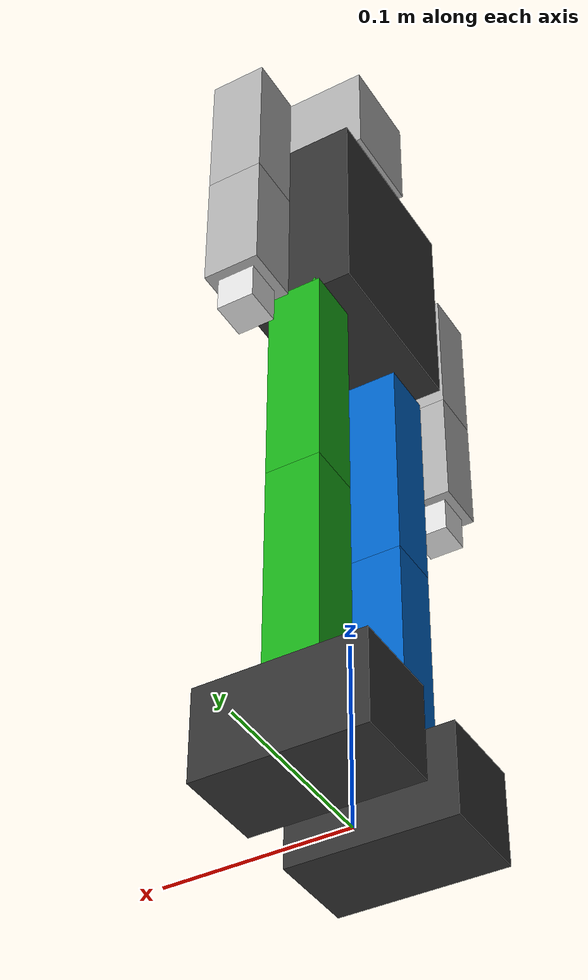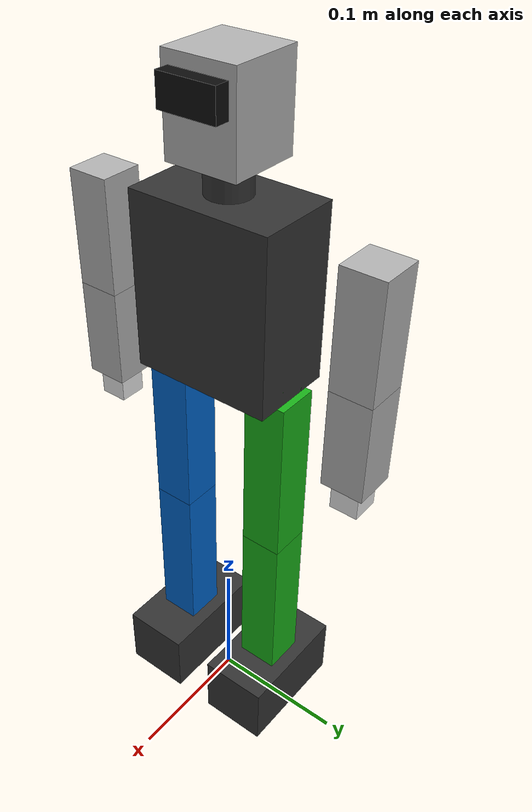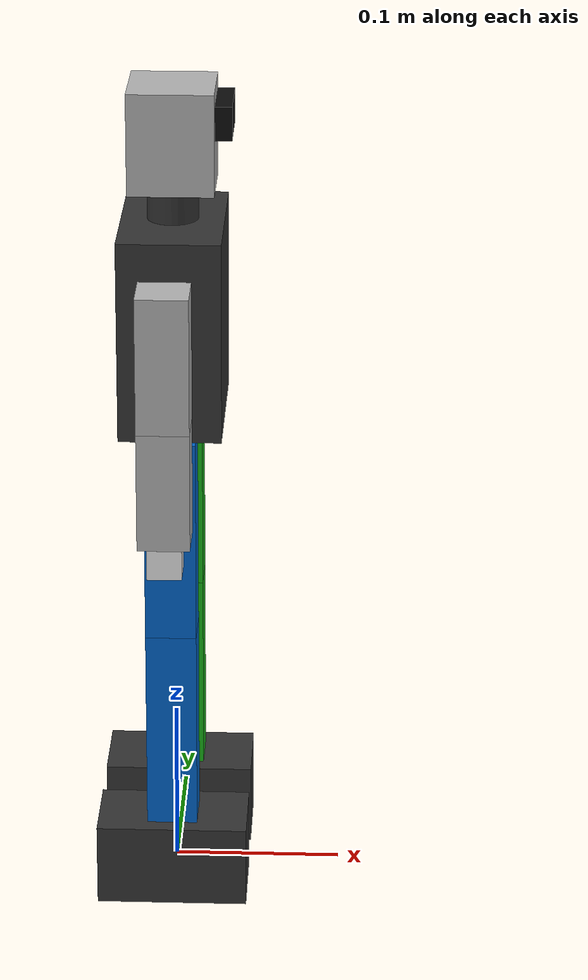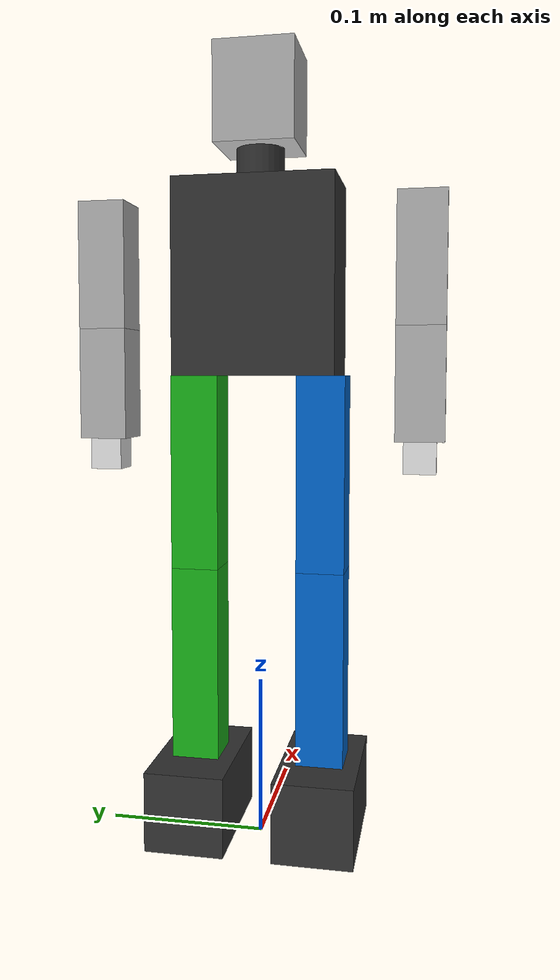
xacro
<?xml version="1.0"?>
<robot name="humanoid_robot" xmlns:xacro="http://www.ros.org/wiki/xacro">

  <!-- ── Include materials ─────────────────────────────── -->
  <xacro:include filename="$(find humanoid_robot)/urdf/materials.xacro"/>

  <!-- Link lengths (meters) -->
  <xacro:property name="thigh_len"    value="0.1225"/>
  <xacro:property name="shank_len"    value="0.1230"/>
  <xacro:property name="foot_height"  value="0.0500"/>
  <xacro:property name="foot_len"     value="0.0900"/>  <!-- foot length front-back -->
  <xacro:property name="foot_width"   value="0.0500"/>  <!-- foot width left-right -->
  <xacro:property name="torso_height" value="0.1200"/>
  <xacro:property name="torso_width"  value="0.1000"/>
  <xacro:property name="torso_depth"  value="0.0600"/>

  <!-- Hip geometry -->
  <xacro:property name="hip_offset_y"  value="0.0400"/>  <!-- 40mm from center to hip joint -->
  <xacro:property name="hip_bracket_w" value="0.0200"/>

  <!-- Arm geometry -->
  <xacro:property name="upper_arm_len" value="0.0800"/>
  <xacro:property name="forearm_len"   value="0.0700"/>
  <xacro:property name="shoulder_offset_y" value="0.0500"/>
  <xacro:property name="shoulder_offset_z" value="0.0500"/>  <!-- up from torso top -->

  <!-- Head geometry -->
  <xacro:property name="head_height" value="0.0600"/>
  <xacro:property name="head_width"  value="0.0500"/>
  <xacro:property name="neck_height" value="0.0200"/>

  <!-- Link visual thickness (for box representations) -->
  <xacro:property name="link_thickness" value="0.0300"/>

  <xacro:property name="foot_clearance" value="0.001"/>

  <!-- Servo / joint mass estimates (kg) -->
  <xacro:property name="torso_mass"   value="0.400"/>
  <xacro:property name="thigh_mass"   value="0.120"/>
  <xacro:property name="shank_mass"   value="0.100"/>
  <xacro:property name="foot_mass"    value="0.060"/>
  <xacro:property name="upper_arm_m"  value="0.080"/>
  <xacro:property name="forearm_m"    value="0.060"/>
  <xacro:property name="head_mass"    value="0.100"/>
  <xacro:property name="bracket_mass" value="0.030"/>

  <!-- ============================================================
       XACRO MACROS
       ============================================================ -->

  <!-- Inertia macro for a solid box (kg, meters) -->
  <xacro:macro name="box_inertia" params="m x y z">
    <inertial>
      <mass value="${m}"/>
      <inertia
        ixx="${m*(y*y+z*z)/12}" ixy="0" ixz="0"
        iyy="${m*(x*x+z*z)/12}" iyz="0"
        izz="${m*(x*x+y*y)/12}"/>
    </inertial>
  </xacro:macro>

  <!-- Inertia macro for a solid cylinder (kg, meters) -->
  <xacro:macro name="cylinder_inertia" params="m r l">
    <inertial>
      <mass value="${m}"/>
      <inertia
        ixx="${m*(3*r*r+l*l)/12}" ixy="0" ixz="0"
        iyy="${m*(3*r*r+l*l)/12}" iyz="0"
        izz="${m*r*r/2}"/>
    </inertial>
  </xacro:macro>

  <xacro:macro name="leg" params="prefix reflect">

    <!-- ── HIP ROLL joint ─────────────────────────────── -->
    <!-- Connects torso to hip bracket; rotation in frontal plane (X axis) -->
    <joint name="${prefix}_hip_roll" type="revolute">
      <parent link="torso"/>
      <child  link="${prefix}_hip_bracket"/>
      <!-- Origin: at hip joint location, offset left/right from torso center -->
      <origin xyz="0 ${reflect * hip_offset_y} ${-torso_height/2}" rpy="0 0 0"/>
      <axis xyz="1 0 0"/>
      <!-- Limits in radians: centered around 0, based on the original 0° to 170° span -->
      <limit lower="${-85.0*pi/180}" upper="${85.0*pi/180}" effort="10" velocity="3.0"/>
      <dynamics damping="0.1" friction="0.1"/>
    </joint>

    <link name="${prefix}_hip_bracket">
      <xacro:box_inertia m="${bracket_mass}"
        x="${hip_bracket_w}" y="${hip_bracket_w}" z="${hip_bracket_w}"/>
      <visual>
        <geometry><box size="${hip_bracket_w} ${hip_bracket_w} ${hip_bracket_w}"/></geometry>
        <material name="${'blue' if prefix == 'r' else 'green'}"/>
      </visual>
      <collision>
        <geometry><box size="${hip_bracket_w} ${hip_bracket_w} ${hip_bracket_w}"/></geometry>
      </collision>
    </link>

    <!-- ── HIP PITCH joint ────────────────────────────── -->
    <!-- Rotation in sagittal plane (Y axis); moves thigh forward/back -->
    <joint name="${prefix}_hip_pitch" type="revolute">
      <parent link="${prefix}_hip_bracket"/>
      <child  link="${prefix}_thigh"/>
      <origin xyz="0 0 0" rpy="0 0 0"/>
      <axis xyz="0 1 0"/>
      <limit lower="${-85.0*pi/180}" upper="${85.0*pi/180}" effort="10" velocity="3.0"/>
      <dynamics damping="0.1" friction="0.1"/>
    </joint>

    <!-- Thigh link — box representing L1 = 122.5mm -->
    <link name="${prefix}_thigh">
      <xacro:box_inertia m="${thigh_mass}"
        x="${link_thickness}" y="${link_thickness}" z="${thigh_len}"/>
      <visual>
        <!-- Offset so top of box is at joint origin (thigh hangs downward) -->
        <origin xyz="0 0 ${-thigh_len/2}" rpy="0 0 0"/>
        <geometry><box size="${link_thickness} ${link_thickness} ${thigh_len}"/></geometry>
        <material name="${'blue' if prefix == 'r' else 'green'}"/>
      </visual>
      <collision>
        <origin xyz="0 0 ${-thigh_len/2}" rpy="0 0 0"/>
        <geometry><box size="${link_thickness} ${link_thickness} ${thigh_len}"/></geometry>
      </collision>
    </link>

    <!-- ── KNEE PITCH joint ───────────────────────────── -->
    <!-- At bottom of thigh, rotates shank forward/back -->
    <joint name="${prefix}_knee_pitch" type="revolute">
      <parent link="${prefix}_thigh"/>
      <child  link="${prefix}_shank"/>
      <origin xyz="0 0 ${-thigh_len}" rpy="0 0 0"/>
      <axis xyz="0 1 0"/>
      <limit lower="0.0" upper="${170.0*pi/180}" effort="10" velocity="3.0"/>
      <dynamics damping="0.1" friction="0.1"/>
    </joint>

    <!-- Shank link — box representing L2 = 123.0mm -->
    <link name="${prefix}_shank">
      <xacro:box_inertia m="${shank_mass}"
        x="${link_thickness}" y="${link_thickness}" z="${shank_len}"/>
      <visual>
        <origin xyz="0 0 ${-shank_len/2}" rpy="0 0 0"/>
        <geometry><box size="${link_thickness} ${link_thickness} ${shank_len}"/></geometry>
        <material name="${'blue' if prefix == 'r' else 'green'}"/>
      </visual>
      <collision>
        <origin xyz="0 0 ${-shank_len/2}" rpy="0 0 0"/>
        <geometry><box size="${link_thickness} ${link_thickness} ${shank_len}"/></geometry>
      </collision>
    </link>

    <!-- ── ANKLE PITCH joint ──────────────────────────── -->
    <!-- At bottom of shank; tilts foot forward/back -->
    <joint name="${prefix}_ankle_pitch" type="revolute">
      <parent link="${prefix}_shank"/>
      <child  link="${prefix}_ankle_bracket"/>
      <origin xyz="0 0 ${-shank_len}" rpy="0 0 0"/>
      <axis xyz="0 1 0"/>
      <limit lower="${-30.0*pi/180}" upper="${80.0*pi/180}" effort="10" velocity="3.0"/>
      <dynamics damping="0.1" friction="0.1"/>
    </joint>

    <link name="${prefix}_ankle_bracket">
      <xacro:box_inertia m="${bracket_mass}"
        x="${hip_bracket_w}" y="${hip_bracket_w}" z="${hip_bracket_w}"/>
      <visual>
        <geometry><box size="${hip_bracket_w} ${hip_bracket_w} ${hip_bracket_w}"/></geometry>
        <material name="orange"/>
      </visual>
      <collision>
        <geometry><box size="${hip_bracket_w} ${hip_bracket_w} ${hip_bracket_w}"/></geometry>
      </collision>
    </link>

    <!-- ── ANKLE ROLL joint ───────────────────────────── -->
    <!-- Tilts foot left/right; mirror sign between legs -->
    <joint name="${prefix}_ankle_roll" type="revolute">
      <parent link="${prefix}_ankle_bracket"/>
      <child  link="${prefix}_foot"/>
      <origin xyz="0 0 0" rpy="0 0 0"/>
      <axis xyz="1 0 0"/>
      <limit lower="${-65.0*pi/180}" upper="${65.0*pi/180}" effort="10" velocity="3.0"/>
      <dynamics damping="0.1" friction="0.1"/>
    </joint>

    <!-- Foot link — flat box representing the foot plate -->
    <link name="${prefix}_foot">
      <xacro:box_inertia m="${foot_mass}"
        x="${foot_len}" y="${foot_width}" z="${foot_height}"/>
      <visual>
        <origin xyz="0 0 ${-foot_height/2}" rpy="0 0 0"/>
        <geometry><box size="${foot_len} ${foot_width} ${foot_height}"/></geometry>
        <material name="dark_grey"/>
      </visual>
      <collision>
        <origin xyz="0 0 ${-foot_height/2}" rpy="0 0 0"/>
        <geometry><box size="${foot_len} ${foot_width} ${foot_height}"/></geometry>
      </collision>
    </link>

  </xacro:macro>  <!-- end leg macro -->

  <xacro:macro name="arm" params="prefix reflect">

    <!-- ── SHOULDER PITCH joint ───────────────────────── -->
    <joint name="${prefix}_shoulder_pitch" type="revolute">
      <parent link="torso"/>
      <child  link="${prefix}_upper_arm"/>
      <origin xyz="0 ${reflect * (torso_width/2 + shoulder_offset_y)} ${shoulder_offset_z}" rpy="0 0 0"/>
      <axis xyz="0 1 0"/>
      <limit lower="0.0" upper="${180.0*pi/180}" effort="5" velocity="3.0"/>
      <dynamics damping="0.05" friction="0.05"/>
    </joint>

    <link name="${prefix}_upper_arm">
      <xacro:box_inertia m="${upper_arm_m}"
        x="${link_thickness}" y="${link_thickness}" z="${upper_arm_len}"/>
      <visual>
        <origin xyz="0 0 ${-upper_arm_len/2}" rpy="0 0 0"/>
        <geometry><box size="${link_thickness} ${link_thickness} ${upper_arm_len}"/></geometry>
        <material name="light_grey"/>
      </visual>
      <collision>
        <origin xyz="0 0 ${-upper_arm_len/2}" rpy="0 0 0"/>
        <geometry><box size="${link_thickness} ${link_thickness} ${upper_arm_len}"/></geometry>
      </collision>
    </link>

    <!-- ── SHOULDER ROLL joint ────────────────────────── -->
    <joint name="${prefix}_shoulder_roll" type="revolute">
      <parent link="${prefix}_upper_arm"/>
      <child  link="${prefix}_forearm"/>
      <origin xyz="0 0 ${-upper_arm_len}" rpy="0 0 0"/>
      <axis xyz="1 0 0"/>
      <limit lower="0.0" upper="${180.0*pi/180}" effort="5" velocity="3.0"/>
      <dynamics damping="0.05" friction="0.05"/>
    </joint>

    <link name="${prefix}_forearm">
      <xacro:box_inertia m="${forearm_m}"
        x="${link_thickness}" y="${link_thickness}" z="${forearm_len}"/>
      <visual>
        <origin xyz="0 0 ${-forearm_len/2}" rpy="0 0 0"/>
        <geometry><box size="${link_thickness} ${link_thickness} ${forearm_len}"/></geometry>
        <material name="light_grey"/>
      </visual>
      <collision>
        <origin xyz="0 0 ${-forearm_len/2}" rpy="0 0 0"/>
        <geometry><box size="${link_thickness} ${link_thickness} ${forearm_len}"/></geometry>
      </collision>
    </link>

    <!-- ── ELBOW ROLL joint ───────────────────────────── -->
    <joint name="${prefix}_elbow_roll" type="revolute">
      <parent link="${prefix}_forearm"/>
      <child  link="${prefix}_hand"/>
      <origin xyz="0 0 ${-forearm_len}" rpy="0 0 0"/>
      <axis xyz="1 0 0"/>
      <limit lower="0.0" upper="${180.0*pi/180}" effort="5" velocity="3.0"/>
      <dynamics damping="0.05" friction="0.05"/>
    </joint>

    <link name="${prefix}_hand">
      <xacro:box_inertia m="0.030" x="0.02" y="0.02" z="0.04"/>
      <visual>
        <geometry><box size="0.02 0.02 0.04"/></geometry>
        <material name="white"/>
      </visual>
      <collision>
        <geometry><box size="0.02 0.02 0.04"/></geometry>
      </collision>
    </link>

  </xacro:macro>  <!-- end arm macro -->

  <!-- ============================================================
       ROBOT LINKS AND JOINTS
       ============================================================ -->

  <!-- ── WORLD → BASE fixed joint ──────────────────────── -->
  <link name="world"/>

  <joint name="world_to_base" type="fixed">
    <parent link="world"/>
    <child  link="base_link"/>
    <!--
      FIX: raise 1mm (foot_clearance) to prevent z-fighting between
      foot bottom face and the grid (both were at exactly z=0).
    -->
    <origin xyz="0 0 ${foot_clearance}" rpy="0 0 0"/>
  </joint>

  <!-- ── BASE LINK ─────────────────────────────────────── -->
  <!-- Reference frame at ground level, between feet -->
  <link name="base_link">
    <xacro:box_inertia m="0.001" x="0.001" y="0.001" z="0.001"/>
  </link>

  <!-- base_link → torso -->
  <joint name="base_to_torso" type="fixed">
    <parent link="base_link"/>
    <child  link="torso"/>
    <!-- Lift torso up: foot_height + shank + thigh + half torso -->
    <origin xyz="0 0 ${foot_height + shank_len + thigh_len + torso_height/2}" rpy="0 0 0"/>
  </joint>

  <!-- ── TORSO ──────────────────────────────────────────── -->
  <link name="torso">
    <xacro:box_inertia m="${torso_mass}"
      x="${torso_depth}" y="${torso_width}" z="${torso_height}"/>
    <visual>
      <geometry><box size="${torso_depth} ${torso_width} ${torso_height}"/></geometry>
      <material name="dark_grey"/>
    </visual>
    <collision>
      <geometry><box size="${torso_depth} ${torso_width} ${torso_height}"/></geometry>
    </collision>
  </link>

  <!-- ── HEAD ASSEMBLY ─────────────────────────────────── -->
  <joint name="neck_fixed" type="fixed">
    <parent link="torso"/>
    <child  link="neck"/>
    <origin xyz="0 0 ${torso_height/2 + neck_height/2}" rpy="0 0 0"/>
  </joint>

  <link name="neck">
    <xacro:cylinder_inertia m="0.020" r="0.015" l="${neck_height}"/>
    <visual>
      <geometry><cylinder radius="0.015" length="${neck_height}"/></geometry>
      <material name="dark_grey"/>
    </visual>
    <collision>
      <geometry><cylinder radius="0.015" length="${neck_height}"/></geometry>
    </collision>
  </link>

  <!-- HEAD YAW -->
  <joint name="head_yaw" type="revolute">
    <parent link="neck"/>
    <child  link="head"/>
    <origin xyz="0 0 ${neck_height/2 + head_height/2}" rpy="0 0 0"/>
    <axis xyz="0 0 1"/>
    <limit lower="0.0" upper="${180.0*pi/180}" effort="2" velocity="3.0"/>
    <dynamics damping="0.05" friction="0.05"/>
  </joint>

  <link name="head">
    <xacro:box_inertia m="${head_mass}"
      x="${head_width}" y="${head_width}" z="${head_height}"/>
    <visual>
      <geometry><box size="${head_width} ${head_width} ${head_height}"/></geometry>
      <material name="light_grey"/>
    </visual>
    <collision>
      <geometry><box size="${head_width} ${head_width} ${head_height}"/></geometry>
    </collision>
  </link>

  <!-- CAMERA PITCH -->
  <joint name="camera_pitch" type="revolute">
    <parent link="head"/>
    <child  link="camera_link"/>
    <origin xyz="${head_width/2} 0 ${head_height*0.2}" rpy="0 0 0"/>
    <axis xyz="0 1 0"/>
    <limit lower="0.0" upper="${180.0*pi/180}" effort="1" velocity="3.0"/>
    <dynamics damping="0.02" friction="0.02"/>
  </joint>

  <link name="camera_link">
    <xacro:box_inertia m="0.020" x="0.02" y="0.04" z="0.02"/>
    <visual>
      <geometry><box size="0.02 0.04 0.02"/></geometry>
      <material name="black"/>
    </visual>
    <collision>
      <geometry><box size="0.02 0.04 0.02"/></geometry>
    </collision>
  </link>

  <!-- ── INSTANTIATE LEGS ───────────────────────────────── -->
  <!-- Right leg: reflect=1  (Y positive = right in robot frame) -->
  <xacro:leg prefix="r" reflect="-1"/>
  <!-- Left leg:  reflect=-1 (Y negative = left in robot frame) -->
  <xacro:leg prefix="l" reflect="1"/>

  <!-- ── INSTANTIATE ARMS ───────────────────────────────── -->
  <xacro:arm prefix="r" reflect="-1"/>
  <xacro:arm prefix="l" reflect="1"/>

</robot>

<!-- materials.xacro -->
<robot xmlns:xacro="http://www.ros.org/wiki/xacro">

  <!-- ============================================================
       materials.xacro — RViz color definitions
       ============================================================ -->

  <material name="dark_grey">
    <color rgba="0.2 0.2 0.2 1.0"/>
  </material>

  <material name="light_grey">
    <color rgba="0.7 0.7 0.7 1.0"/>
  </material>

  <material name="white">
    <color rgba="0.9 0.9 0.9 1.0"/>
  </material>

  <material name="orange">
    <color rgba="1.0 0.5 0.0 1.0"/>
  </material>

  <material name="blue">
    <color rgba="0.0 0.4 0.8 1.0"/>
  </material>

  <material name="red">
    <color rgba="0.8 0.1 0.1 1.0"/>
  </material>

  <material name="green">
    <color rgba="0.1 0.7 0.1 1.0"/>
  </material>

  <material name="black">
    <color rgba="0.05 0.05 0.05 1.0"/>
  </material>

</robot>
